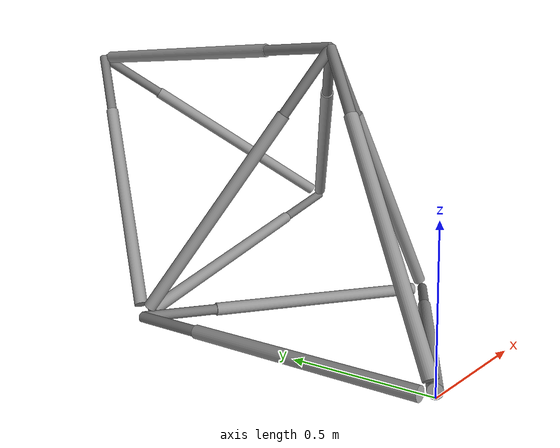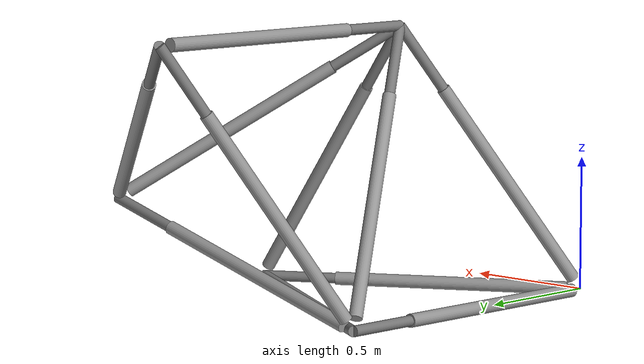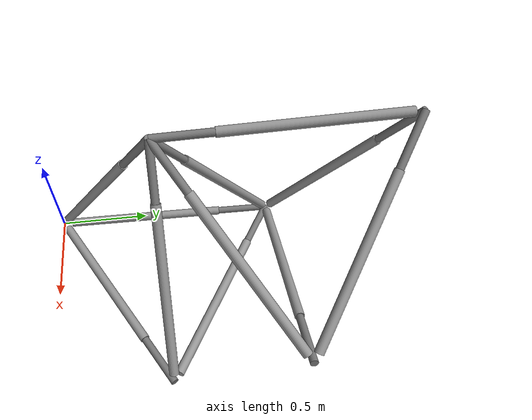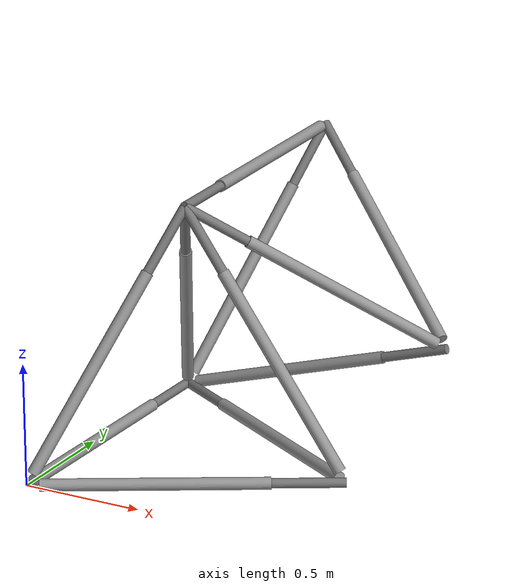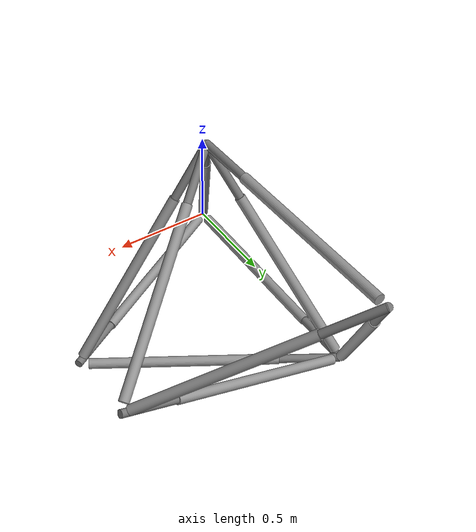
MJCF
<mujoco model="2-tet-1">
  <compiler angle="radian" meshdir="assets" autolimits="true"/>
  <option gravity="0 0 -9.81" timestep="0.002" integrator="implicit"/>

  <option cone="elliptic" impratio="10"/>

  <asset>
    <material name="metal" rgba="0.58 0.58 0.58 1"/>
    <material name="gray" rgba="0.4627 0.4627 0.4627 1"/>
    <material name="red" rgba="0.9 0.1 0.1 1"/>
    <texture name="grid" type="2d" builtin="checker" width="512" height="512" rgb1=".1 .2 .3" rgb2=".2 .3 .4"/>
    <material name="grid" texture="grid" texrepeat="1 1" texuniform="true" reflectance=".2"/>
  </asset>

  <worldbody>
  <body name="ground" pos="0 0 0">
  <freejoint/>

    <body name="[0-1-0]" pos="0.000000 0.000000 0.000000" >

    <geom type="cylinder" pos="0.435847 0.245026 -0.000000" axisangle="-0.490051 0.871694 0.000000 1.570796" size="0.025 0.45" material="metal" contype="1"/>
    <body name="[0-1-1]" pos="0.435847 0.245026 -0.000000" >
        <geom type="cylinder" pos="0.210902 0.118565 -0.000000" axisangle="-0.490051 0.871694 0.000000 1.570796" size="0.02 0.5" material="gray" contype="1"/>
        <joint name="Linear-0-1" type="slide" axis="0.871694 0.490051 -0.000000" range="-0.241945 0.708055"/>

    <body name="[1-2-0]" pos="0.646748 0.363591 -0.000000" >
    <joint name="Passive1-2" type="ball" pos="0.000000 0.000000 0.000000" axis="0 1 0" damping=".9"/>
    <geom type="cylinder" pos="-0.430122 0.254942 0.000000" axisangle="-0.509883 -0.860244 0.000000 1.570796" size="0.025 0.45" material="metal" contype="1"/>
    <body name="[1-2-1]" pos="-0.430122 0.254942 0.000000" >
        <geom type="cylinder" pos="-0.208131 0.123363 0.000000" axisangle="-0.509883 -0.860244 0.000000 1.570796" size="0.02 0.5" material="gray" contype="1"/>
        <joint name="Linear-1-2" type="slide" axis="-0.860244 0.509883 0.000000" range="-0.241945 0.708055"/>

    <body name="[2-3-0]" pos="-0.638253 0.378305 0.000000" >
    <joint name="Passive2-3" type="ball" pos="0.000000 0.000000 0.000000" axis="0 1 0" damping=".9"/>
    <geom type="cylinder" pos="0.478596 0.006849 0.144565" axisangle="-0.013698 0.957192 0.000000 1.277478" size="0.025 0.45" material="metal" contype="1"/>
    <body name="[2-3-1]" pos="0.478596 0.006849 0.144565" >
        <geom type="cylinder" pos="0.231587 0.003314 0.069954" axisangle="-0.013698 0.957192 0.000000 1.277478" size="0.02 0.5" material="gray" contype="1"/>
        <joint name="Linear-2-3" type="slide" axis="0.957192 0.013698 0.289131" range="-0.241945 0.708055"/>

    <body name="[3-4-0]" pos="0.710183 0.010163 0.214519" >
    <joint name="Passive3-4" type="ball" pos="0.000000 0.000000 0.000000" axis="0 1 0" damping=".9"/>
    <geom type="cylinder" pos="-0.345776 0.241416 0.268622" axisangle="-0.482831 -0.691551 0.000000 1.003631" size="0.025 0.45" material="metal" contype="1"/>
    <body name="[3-4-1]" pos="-0.345776 0.241416 0.268622" >
        <geom type="cylinder" pos="-0.167317 0.116818 0.129983" axisangle="-0.482831 -0.691551 0.000000 1.003631" size="0.02 0.5" material="gray" contype="1"/>
        <joint name="Linear-3-4" type="slide" axis="-0.691551 0.482831 0.537243" range="-0.241945 0.708055"/>

    <body name="[4-5-0]" pos="-0.513093 0.358234 0.398605" >
    <joint name="Passive4-5" type="ball" pos="0.000000 0.000000 0.000000" axis="0 1 0" damping=".9"/>
    <geom type="cylinder" pos="0.008646 -0.499901 -0.004939" axisangle="0.999802 0.017291 -0.000000 1.580674" size="0.025 0.45" material="metal" contype="1"/>
    <body name="[4-5-1]" pos="0.008646 -0.499901 -0.004939" >
        <geom type="cylinder" pos="0.004183 -0.241897 -0.002390" axisangle="0.999802 0.017291 -0.000000 1.580674" size="0.02 0.5" material="gray" contype="1"/>
        <joint name="Linear-4-5" type="slide" axis="0.017291 -0.999802 -0.009877" range="-0.241945 0.708055"/>

    </body>
    </body>

    </body>
    </body>

    <body name="[3-5-0]" pos="0.710183 0.010163 0.214519" >
    <joint name="Passive3-5" type="ball" pos="0.000000 0.000000 0.000000" axis="0 1 0" damping=".9"/>
    <geom type="cylinder" pos="-0.337130 -0.258485 0.263683" axisangle="0.516970 -0.674260 0.000000 1.015299" size="0.025 0.45" material="metal" contype="1"/>
    <body name="[3-5-1]" pos="-0.337130 -0.258485 0.263683" >
        <geom type="cylinder" pos="-0.163134 -0.125078 0.127593" axisangle="0.516970 -0.674260 0.000000 1.015299" size="0.02 0.5" material="gray" contype="1"/>
        <joint name="Linear-3-5" type="slide" axis="-0.674260 -0.516970 0.527366" range="-0.241945 0.708055"/>

    </body>
    </body>

    </body>
    </body>

    <body name="[2-4-0]" pos="-0.638253 0.378305 0.000000" >
    <joint name="Passive2-4" type="ball" pos="0.000000 0.000000 0.000000" axis="0 1 0" damping=".9"/>
    <geom type="cylinder" pos="0.132820 0.248265 0.413187" axisangle="-0.496529 0.265640 0.000000 0.598158" size="0.025 0.45" material="metal" contype="1"/>
    <body name="[2-4-1]" pos="0.132820 0.248265 0.413187" >
        <geom type="cylinder" pos="0.064270 0.120133 0.199937" axisangle="-0.496529 0.265640 0.000000 0.598158" size="0.02 0.5" material="gray" contype="1"/>
        <joint name="Linear-2-4" type="slide" axis="0.265640 0.496529 0.826374" range="-0.241945 0.708055"/>

    </body>
    </body>

    <body name="[2-5-0]" pos="-0.638253 0.378305 0.000000" >
    <joint name="Passive2-5" type="ball" pos="0.000000 0.000000 0.000000" axis="0 1 0" damping=".9"/>
    <geom type="cylinder" pos="0.141466 -0.251636 0.408248" axisangle="0.503273 0.282931 -0.000000 0.615480" size="0.025 0.45" material="metal" contype="1"/>
    <body name="[2-5-1]" pos="0.141466 -0.251636 0.408248" >
        <geom type="cylinder" pos="0.068454 -0.121764 0.197547" axisangle="0.503273 0.282931 -0.000000 0.615480" size="0.02 0.5" material="gray" contype="1"/>
        <joint name="Linear-2-5" type="slide" axis="0.282931 -0.503273 0.816497" range="-0.241945 0.708055"/>

    </body>
    </body>

    </body>
    </body>

    <body name="[1-5-0]" pos="0.646748 0.363591 -0.000000" >
    <joint name="Passive1-5" type="ball" pos="0.000000 0.000000 0.000000" axis="0 1 0" damping=".9"/>
    <geom type="cylinder" pos="-0.288656 0.003305 0.408248" axisangle="-0.006611 -0.577312 0.000000 0.615480" size="0.025 0.45" material="metal" contype="1"/>
    <body name="[1-5-1]" pos="-0.288656 0.003305 0.408248" >
        <geom type="cylinder" pos="-0.139678 0.001599 0.197547" axisangle="-0.006611 -0.577312 0.000000 0.615480" size="0.02 0.5" material="gray" contype="1"/>
        <joint name="Linear-1-5" type="slide" axis="-0.577312 0.006611 0.816497" range="-0.241945 0.708055"/>

    </body>
    </body>

    </body>
    </body>

    <body name="[0-2-0]" pos="0.000000 0.000000 0.000000" >
    <joint name="Passive0-2" type="ball" pos="0.000000 0.000000 0.000000" axis="0 1 0" damping=".9"/>
    <geom type="cylinder" pos="0.005725 0.499967 -0.000000" axisangle="-0.999934 0.011450 0.000000 1.570796" size="0.025 0.45" material="metal" contype="1"/>
    <body name="[0-2-1]" pos="0.005725 0.499967 -0.000000" >
        <geom type="cylinder" pos="0.002770 0.241929 -0.000000" axisangle="-0.999934 0.011450 0.000000 1.570796" size="0.02 0.5" material="gray" contype="1"/>
        <joint name="Linear-0-2" type="slide" axis="0.011450 0.999934 -0.000000" range="-0.241945 0.708055"/>

    </body>
    </body>

    <body name="[0-5-0]" pos="0.000000 0.000000 0.000000" >
    <joint name="Passive0-5" type="ball" pos="0.000000 0.000000 0.000000" axis="0 1 0" damping=".9"/>
    <geom type="cylinder" pos="0.147191 0.248331 0.408248" axisangle="-0.496662 0.294381 0.000000 0.615480" size="0.025 0.45" material="metal" contype="1"/>
    <body name="[0-5-1]" pos="0.147191 0.248331 0.408248" >
        <geom type="cylinder" pos="0.071224 0.120165 0.197547" axisangle="-0.496662 0.294381 0.000000 0.615480" size="0.02 0.5" material="gray" contype="1"/>
        <joint name="Linear-0-5" type="slide" axis="0.294381 0.496662 0.816497" range="-0.241945 0.708055"/>

    </body>
    </body>
    </body> </worldbody> <equality>
<connect name="kinematic_link_0-0" active="true" body1="[0-2-1]" body2="[1-2-1]" anchor=" 0.008495 0.741896 -0.000000" />
<connect name="kinematic_link_1-0" active="true" body1="[0-5-1]" body2="[1-5-1]" anchor=" 0.218415 0.368496 0.605795" />
<connect name="kinematic_link_1-1" active="true" body1="[0-5-1]" body2="[2-5-1]" anchor=" 0.218415 0.368496 0.605795" />
<connect name="kinematic_link_1-2" active="true" body1="[0-5-1]" body2="[3-5-1]" anchor=" 0.218415 0.368496 0.605795" />
<connect name="kinematic_link_1-3" active="true" body1="[0-5-1]" body2="[4-5-1]" anchor=" 0.218415 0.368496 0.605795" />
<connect name="kinematic_link_2-0" active="true" body1="[1-5-1]" body2="[0-5-1]" anchor=" -0.428334 0.004905 0.605795" />
<connect name="kinematic_link_2-1" active="true" body1="[1-5-1]" body2="[2-5-1]" anchor=" -0.428334 0.004905 0.605795" />
<connect name="kinematic_link_2-2" active="true" body1="[1-5-1]" body2="[3-5-1]" anchor=" -0.428334 0.004905 0.605795" />
<connect name="kinematic_link_2-3" active="true" body1="[1-5-1]" body2="[4-5-1]" anchor=" -0.428334 0.004905 0.605795" />
<connect name="kinematic_link_3-0" active="true" body1="[2-4-1]" body2="[3-4-1]" anchor=" 0.197090 0.368397 0.613124" />
<connect name="kinematic_link_4-0" active="true" body1="[2-5-1]" body2="[0-5-1]" anchor=" 0.209919 -0.373400 0.605795" />
<connect name="kinematic_link_4-1" active="true" body1="[2-5-1]" body2="[1-5-1]" anchor=" 0.209919 -0.373400 0.605795" />
<connect name="kinematic_link_4-2" active="true" body1="[2-5-1]" body2="[3-5-1]" anchor=" 0.209919 -0.373400 0.605795" />
<connect name="kinematic_link_4-3" active="true" body1="[2-5-1]" body2="[4-5-1]" anchor=" 0.209919 -0.373400 0.605795" />
<connect name="kinematic_link_5-0" active="true" body1="[3-5-1]" body2="[0-5-1]" anchor=" -0.500264 -0.383563 0.391276" />
<connect name="kinematic_link_5-1" active="true" body1="[3-5-1]" body2="[1-5-1]" anchor=" -0.500264 -0.383563 0.391276" />
<connect name="kinematic_link_5-2" active="true" body1="[3-5-1]" body2="[2-5-1]" anchor=" -0.500264 -0.383563 0.391276" />
<connect name="kinematic_link_5-3" active="true" body1="[3-5-1]" body2="[4-5-1]" anchor=" -0.500264 -0.383563 0.391276" />
<connect name="kinematic_link_6-0" active="true" body1="[4-5-1]" body2="[0-5-1]" anchor=" 0.012829 -0.741797 -0.007329" />
<connect name="kinematic_link_6-1" active="true" body1="[4-5-1]" body2="[1-5-1]" anchor=" 0.012829 -0.741797 -0.007329" />
<connect name="kinematic_link_6-2" active="true" body1="[4-5-1]" body2="[2-5-1]" anchor=" 0.012829 -0.741797 -0.007329" />
<connect name="kinematic_link_6-3" active="true" body1="[4-5-1]" body2="[3-5-1]" anchor=" 0.012829 -0.741797 -0.007329" /></equality><actuator>

<intvelocity name="Member-1-2" joint="Linear-1-2" kp="18000"  kv="10000" inheritrange="1" />
<intvelocity name="Member-1-5" joint="Linear-1-5" kp="18000"  kv="10000" inheritrange="1" />
<intvelocity name="Member-0-1" joint="Linear-0-1" kp="18000"  kv="10000" inheritrange="1" />
<intvelocity name="Member-0-2" joint="Linear-0-2" kp="18000"  kv="10000" inheritrange="1" />
<intvelocity name="Member-0-5" joint="Linear-0-5" kp="18000"  kv="10000" inheritrange="1" />
<intvelocity name="Member-2-3" joint="Linear-2-3" kp="18000"  kv="10000" inheritrange="1" />
<intvelocity name="Member-2-4" joint="Linear-2-4" kp="18000"  kv="10000" inheritrange="1" />
<intvelocity name="Member-2-5" joint="Linear-2-5" kp="18000"  kv="10000" inheritrange="1" />
<intvelocity name="Member-3-4" joint="Linear-3-4" kp="18000"  kv="10000" inheritrange="1" />
<intvelocity name="Member-3-5" joint="Linear-3-5" kp="18000"  kv="10000" inheritrange="1" />
<intvelocity name="Member-4-5" joint="Linear-4-5" kp="18000"  kv="10000" inheritrange="1" /></actuator>
</mujoco>
